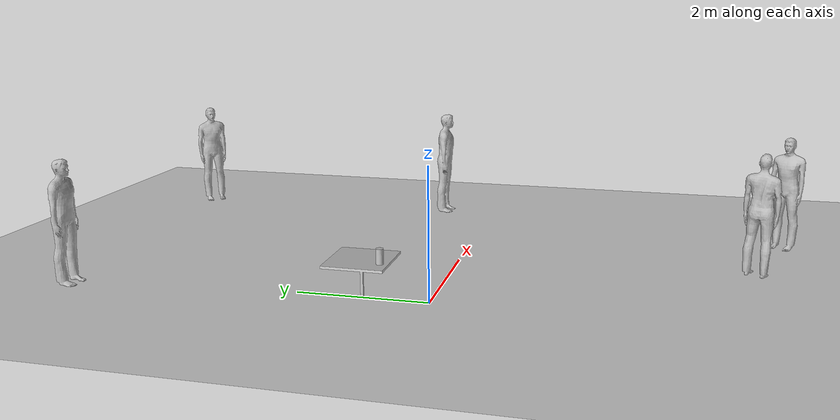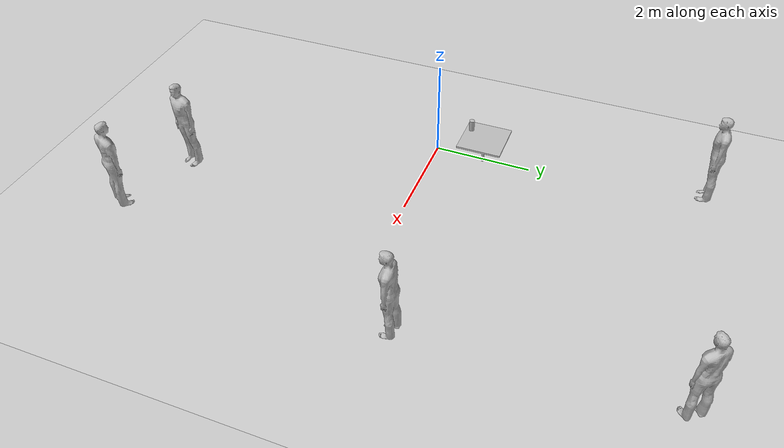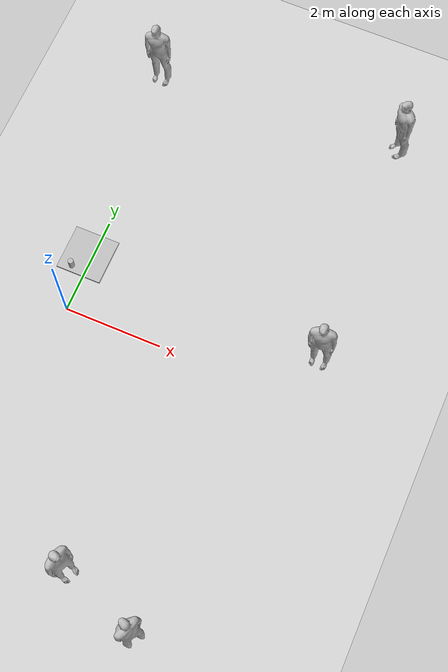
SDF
<sdf version="1.7">
 <world name="default">
  <light name="sun" type="directional">
   <pose>0 0 10 0 -0 0</pose>
   <diffuse>0.8 0.8 0.8 1</diffuse>
   <specular>0.2 0.2 0.2 1</specular>
   <attenuation>
    <range>1000</range>
    <constant>0.9</constant>
    <linear>0.01</linear>
    <quadratic>0.001</quadratic>
   </attenuation>
   <direction>-0.5 0.1 -0.9</direction>
   <spot><inner_angle>0</inner_angle><outer_angle>0</outer_angle><falloff>0</falloff></spot>
  </light>
  <model name="ground_plane">
   <static>1</static>
   <link name="link">
    <collision name="collision">
     <geometry><plane><normal>0 0 1</normal><size>100 100</size></plane></geometry>
     <surface>
      <contact><collide_bitmask>65535</collide_bitmask></contact>
      <friction><ode><mu>100</mu><mu2>50</mu2></ode></friction>
     </surface>
    </collision>
    <visual name="visual">
     <cast_shadows>0</cast_shadows>
     <geometry><plane><normal>0 0 1</normal><size>100 100</size></plane></geometry>
     <material>
      <script><uri>file://media/materials/scripts/gazebo.material</uri><name>Gazebo/Grey</name></script>
     </material>
    </visual>
   </link>
  </model>
  <gravity>0 0 -9.8</gravity>
  <magnetic_field>6e-06 2.3e-05 -4.2e-05</magnetic_field>
  <atmosphere type="adiabatic"/>
  <physics type="ode">
   <max_step_size>0.001</max_step_size>
   <real_time_factor>1</real_time_factor>
   <real_time_update_rate>1000</real_time_update_rate>
  </physics>
  <scene><ambient>0.4 0.4 0.4 1</ambient><background>0.7 0.7 0.7 1</background><shadows>1</shadows></scene>
  <spherical_coordinates>
   <surface_model>EARTH_WGS84</surface_model>
   <latitude_deg>0</latitude_deg>
   <longitude_deg>0</longitude_deg>
   <elevation>0</elevation>
   <heading_deg>0</heading_deg>
  </spherical_coordinates>
  <model name="MyCafeTable">
   <model name="cafe_table">
    <static>1</static>
    <link name="link">
     <collision name="surface">
      <pose>0 0 0.755 0 -0 0</pose>
      <geometry><box><size>0.913 0.913 0.04</size></box></geometry>
     </collision>
     <collision name="column">
      <pose>0 0 0.37 0 -0 0</pose>
      <geometry><box><size>0.042 0.042 0.74</size></box></geometry>
     </collision>
     <collision name="base">
      <pose>0 0 0.02 0 -0 0</pose>
      <geometry><box><size>0.56 0.56 0.04</size></box></geometry>
     </collision>
     <visual name="visual">
      <geometry><mesh><uri>model://cafe_table/meshes/cafe_table.dae</uri></mesh></geometry>
     </visual>
    </link>
    <pose>4e-06 0 0 0 -0 0</pose>
   </model>
   <static>0</static>
   <pose>0.049138 1.01633 -0.192198 0 -0 0</pose>
  </model>
  <model name="MyBeer">
   <model name="beer">
    <link name="link">
     <pose>0 0 0.115 0 -0 0</pose>
     <inertial>
      <mass>0.39</mass>
      <inertia><ixx>0.00058</ixx><ixy>0</ixy><ixz>0</ixz><iyy>0.00058</iyy><iyz>0</iyz><izz>0.00019</izz></inertia>
     </inertial>
     <collision name="collision">
      <geometry><cylinder><radius>0.055</radius><length>0.23</length></cylinder></geometry>
     </collision>
     <visual name="visual">
      <geometry><cylinder><radius>0.055</radius><length>0.23</length></cylinder></geometry>
      <material>
       <script>
        <uri>model://beer/materials/scripts</uri>
        <uri>model://beer/materials/textures</uri>
        <name>Beer/Diffuse</name>
       </script>
      </material>
     </visual>
    </link>
    <pose>-2e-06 -0 0 0 -0 0</pose>
   </model>
   <static>0</static>
   <pose>-0.134721 0.681186 0.582803 6e-06 1.8e-05 0.000718</pose>
  </model>
  <model name="MyStandingPerson">
   <model name="person_standing">
    <link name="link">
     <inertial>
      <pose>0 -0.1 0.95 0 -0 0</pose>
      <mass>80</mass>
      <inertia><ixx>24.88</ixx><ixy>0</ixy><ixz>0</ixz><iyy>25.73</iyy><iyz>0</iyz><izz>2.48</izz></inertia>
     </inertial>
     <collision name="bottom">
      <pose>0 -0.1 0.01 0 -0 0</pose>
      <geometry><box><size>0.5 0.35 0.02</size></box></geometry>
     </collision>
     <collision name="person">
      <pose>0 0 0.02 0.04 -0 0</pose>
      <geometry><mesh><uri>model://person_standing/meshes/standing.dae</uri></mesh></geometry>
     </collision>
     <visual name="visual">
      <pose>0 0 0.02 0.04 -0 0</pose>
      <geometry><mesh><uri>model://person_standing/meshes/standing.dae</uri></mesh></geometry>
     </visual>
    </link>
    <pose>0 -4e-06 0 0 -0 0</pose>
   </model>
   <static>0</static>
   <pose>-0.423578 5.56587 -0 1e-06 1e-06 -0.000266</pose>
  </model>
  <model name="MyPeople">
   <model name="MyStandingPerson">
    <model name="person_standing">
     <link name="link">
      <inertial>
       <pose>0 -0.1 0.95 0 -0 0</pose>
       <mass>80</mass>
       <inertia><ixx>24.88</ixx><ixy>0</ixy><ixz>0</ixz><iyy>25.73</iyy><iyz>0</iyz><izz>2.48</izz></inertia>
      </inertial>
      <collision name="bottom">
       <pose>0 -0.1 0.01 0 -0 0</pose>
       <geometry><box><size>0.5 0.35 0.02</size></box></geometry>
      </collision>
      <collision name="person">
       <pose>0 0 0.02 0.04 -0 0</pose>
       <geometry><mesh><uri>model://person_standing/meshes/standing.dae</uri></mesh></geometry>
      </collision>
      <visual name="visual">
       <pose>0 0 0.02 0.04 -0 0</pose>
       <geometry><mesh><uri>model://person_standing/meshes/standing.dae</uri></mesh></geometry>
      </visual>
     </link>
     <pose>0 -4e-06 0 0 -0 0</pose>
    </model>
    <static>0</static>
    <pose>0.859104 6.61376 0 0 0 -0.887159</pose>
   </model>
   <model name="MyStandingPerson_0">
    <model name="person_standing">
     <link name="link">
      <inertial>
       <pose>0 -0.1 0.95 0 -0 0</pose>
       <mass>80</mass>
       <inertia><ixx>24.88</ixx><ixy>0</ixy><ixz>0</ixz><iyy>25.73</iyy><iyz>0</iyz><izz>2.48</izz></inertia>
      </inertial>
      <collision name="bottom">
       <pose>0 -0.1 0.01 0 -0 0</pose>
       <geometry><box><size>0.5 0.35 0.02</size></box></geometry>
      </collision>
      <collision name="person">
       <pose>0 0 0.02 0.04 -0 0</pose>
       <geometry><mesh><uri>model://person_standing/meshes/standing.dae</uri></mesh></geometry>
      </collision>
      <visual name="visual">
       <pose>0 0 0.02 0.04 -0 0</pose>
       <geometry><mesh><uri>model://person_standing/meshes/standing.dae</uri></mesh></geometry>
      </visual>
     </link>
     <pose>0 -4e-06 0 0 -0 0</pose>
    </model>
    <static>0</static>
    <pose>0.987639 1.76196 0 0 -0 0</pose>
   </model>
   <model name="MyStandingPerson_1">
    <model name="person_standing">
     <link name="link">
      <inertial>
       <pose>0 -0.1 0.95 0 -0 0</pose>
       <mass>80</mass>
       <inertia><ixx>24.88</ixx><ixy>0</ixy><ixz>0</ixz><iyy>25.73</iyy><iyz>0</iyz><izz>2.48</izz></inertia>
      </inertial>
      <collision name="bottom">
       <pose>0 -0.1 0.01 0 -0 0</pose>
       <geometry><box><size>0.5 0.35 0.02</size></box></geometry>
      </collision>
      <collision name="person">
       <pose>0 0 0.02 0.04 -0 0</pose>
       <geometry><mesh><uri>model://person_standing/meshes/standing.dae</uri></mesh></geometry>
      </collision>
      <visual name="visual">
       <pose>0 0 0.02 0.04 -0 0</pose>
       <geometry><mesh><uri>model://person_standing/meshes/standing.dae</uri></mesh></geometry>
      </visual>
     </link>
     <pose>0 -4e-06 0 0 -0 0</pose>
    </model>
    <static>0</static>
    <pose>-1.79407 -3.8611 0 0 -0 1.18655</pose>
   </model>
   <model name="MyStandingPerson_2">
    <model name="person_standing">
     <link name="link">
      <inertial>
       <pose>0 -0.1 0.95 0 -0 0</pose>
       <mass>80</mass>
       <inertia><ixx>24.88</ixx><ixy>0</ixy><ixz>0</ixz><iyy>25.73</iyy><iyz>0</iyz><izz>2.48</izz></inertia>
      </inertial>
      <collision name="bottom">
       <pose>0 -0.1 0.01 0 -0 0</pose>
       <geometry><box><size>0.5 0.35 0.02</size></box></geometry>
      </collision>
      <collision name="person">
       <pose>0 0 0.02 0.04 -0 0</pose>
       <geometry><mesh><uri>model://person_standing/meshes/standing.dae</uri></mesh></geometry>
      </collision>
      <visual name="visual">
       <pose>0 0 0.02 0.04 -0 0</pose>
       <geometry><mesh><uri>model://person_standing/meshes/standing.dae</uri></mesh></geometry>
      </visual>
     </link>
     <pose>0 -4e-06 0 0 -0 0</pose>
    </model>
    <static>0</static>
    <pose>-0.052677 -4.51462 0 0 0 -2.11226</pose>
   </model>
   <static>0</static>
   <pose>3.971 -0.7447 0 0 -0 0</pose>
  </model>
 </world>
</sdf>
